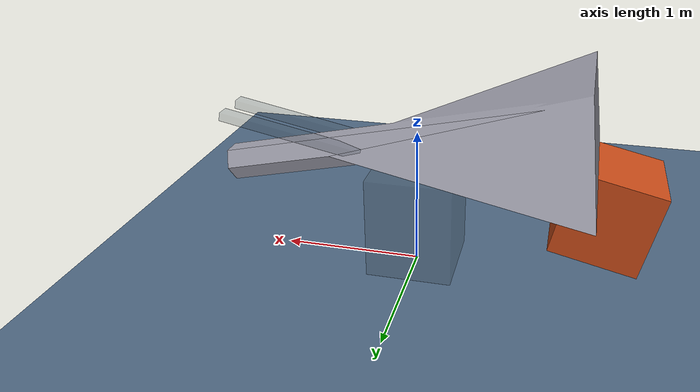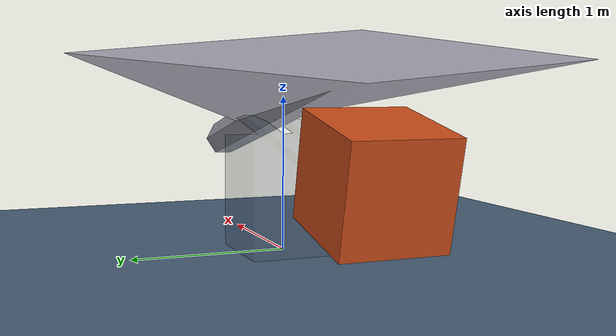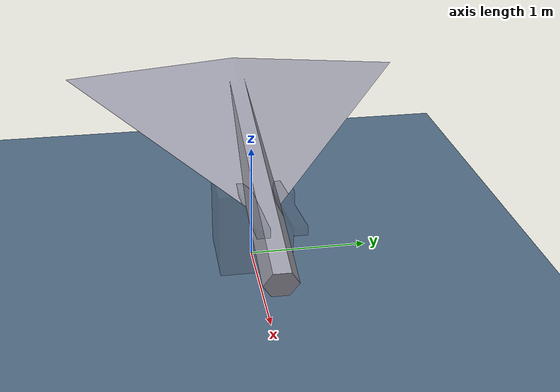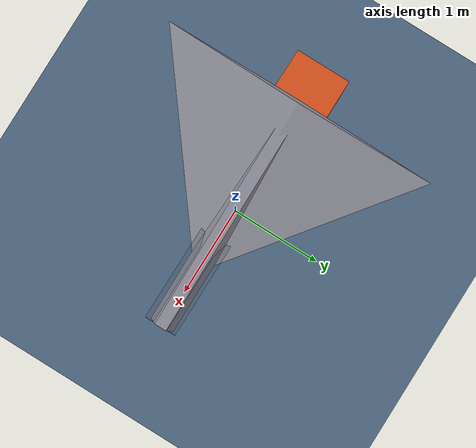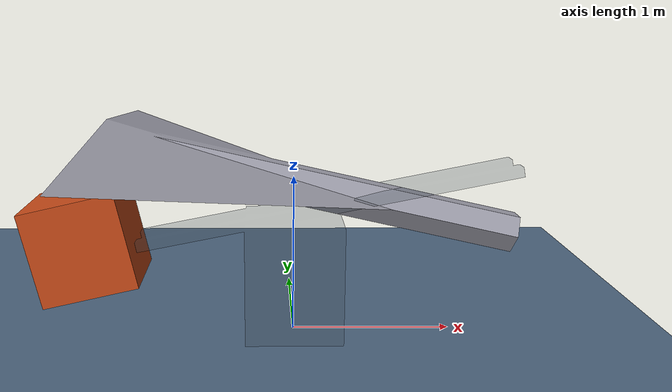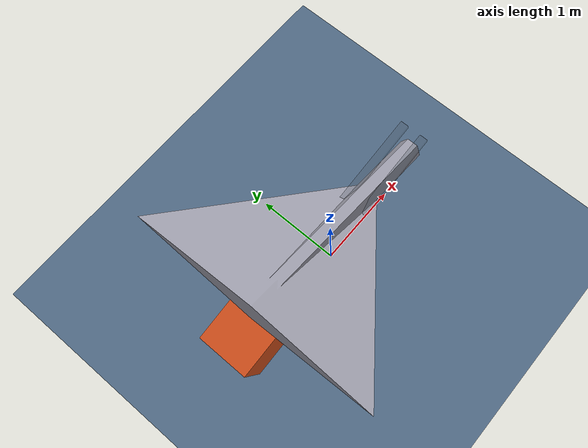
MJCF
<mujoco model="uav_rail_scene_1">

  <!-- ==============================================
       Compiler & Options
       ============================================== -->
  <compiler angle="degree" eulerseq="xyz"
             meshdir="/home/heinz/isaaclab_uav/assets"/>

  <option timestep="0.005" gravity="0 0 -9.81"
          impratio="20" tolerance="1e-8" ls_tolerance="1e-8"
          noslip_tolerance="1e-8">
    <flag contact="enable"/>
  </option>

  <contact>
    <pair name="uav_ground" geom1="ground" geom2="uav_body"
          solref="0.01 0.9" solimp="0.95 0.99 0.001 0.5 2"
          condim="3" friction="0.5 0.3 0.1"/>
    <pair name="uav_rail_obj" geom1="rail_obj_geom" geom2="uav_body"
          solref="0.01 0.9" solimp="0.95 0.99 0.001 0.5 2"
          condim="3" friction="0.3 0.2 0.1"/>
  </contact>

  <visual>
    <map stiffness="1000" fogstart="10" fogend="80"/>
    <quality shadowsize="2048"/>
    <headlight diffuse="0.6 0.6 0.6" ambient="0.3 0.3 0.3"/>
  </visual>

  <!-- ==============================================
       Assets: Meshes
       ============================================== -->
  <asset>
    <!-- UAV collision/visual mesh -->
    <mesh name="uav_mesh"
          file="shahed-136/source/shahed_collision_0.stl"/>
    <!-- Rail structure mesh — used for visual and collision on rail_obj -->
    <mesh name="rail_mesh"
          file="shahed-136/source/rail_collision.stl"/>
  </asset>

  <!-- ==============================================
       World Body
       ============================================== -->
  <worldbody>

    <!-- Ground plane (infinite flat plane at z=0) -->
    <geom name="ground" type="plane" size="50 50 0.1" pos="0 0 0"
          rgba="0.3 0.4 0.5 1"/>

    <!-- Lighting -->
    <light directional="true" diffuse="0.8 0.8 0.8" specular="0.2 0.2 0.2"
           pos="5 5 10" dir="-0.5 -0.5 -1"/>

    <body name="rail_obj" pos="0 0 0" quat="1 0 0 0">
      <geom name="rail_obj_geom" type="mesh" mesh="rail_mesh"
            rgba="0.25 0.30 0.35 0.25"
            density="0"/>
      <geom name="rail_obj_cube" type="box" size="0.3 0.3 0.3"
            pos="-1.3 0 0.6" euler="0 -12.8 0"
            rgba="0.8 0.3 0.1 1"
            density="0"/>
    </body>

    <body name="uav" pos="-0.2 0 1.0" euler="0 12.8 0">
      <!-- 6-DoF free joint -->
      <joint name="uav_joint" type="free"/>

      <!-- Inertial: mass=200 kg, inertia from URDF -->
      <inertial pos="0 0 0" mass="200" diaginertia="40 40 20"/>

      <!-- UAV — full collision with everything (default contype/affinity).  -->
      <geom name="uav_body" type="mesh" mesh="uav_mesh"
            rgba="0.6 0.6 0.65 1"
            density="0"/>

    </body>

  </worldbody>

  <!-- ==============================================
       Sensors
       ============================================== -->
  <sensor>
    <!-- UAV body velocity -->
    <framelinvel name="uav_vel" objtype="body" objname="uav"/>
  </sensor>

</mujoco>
